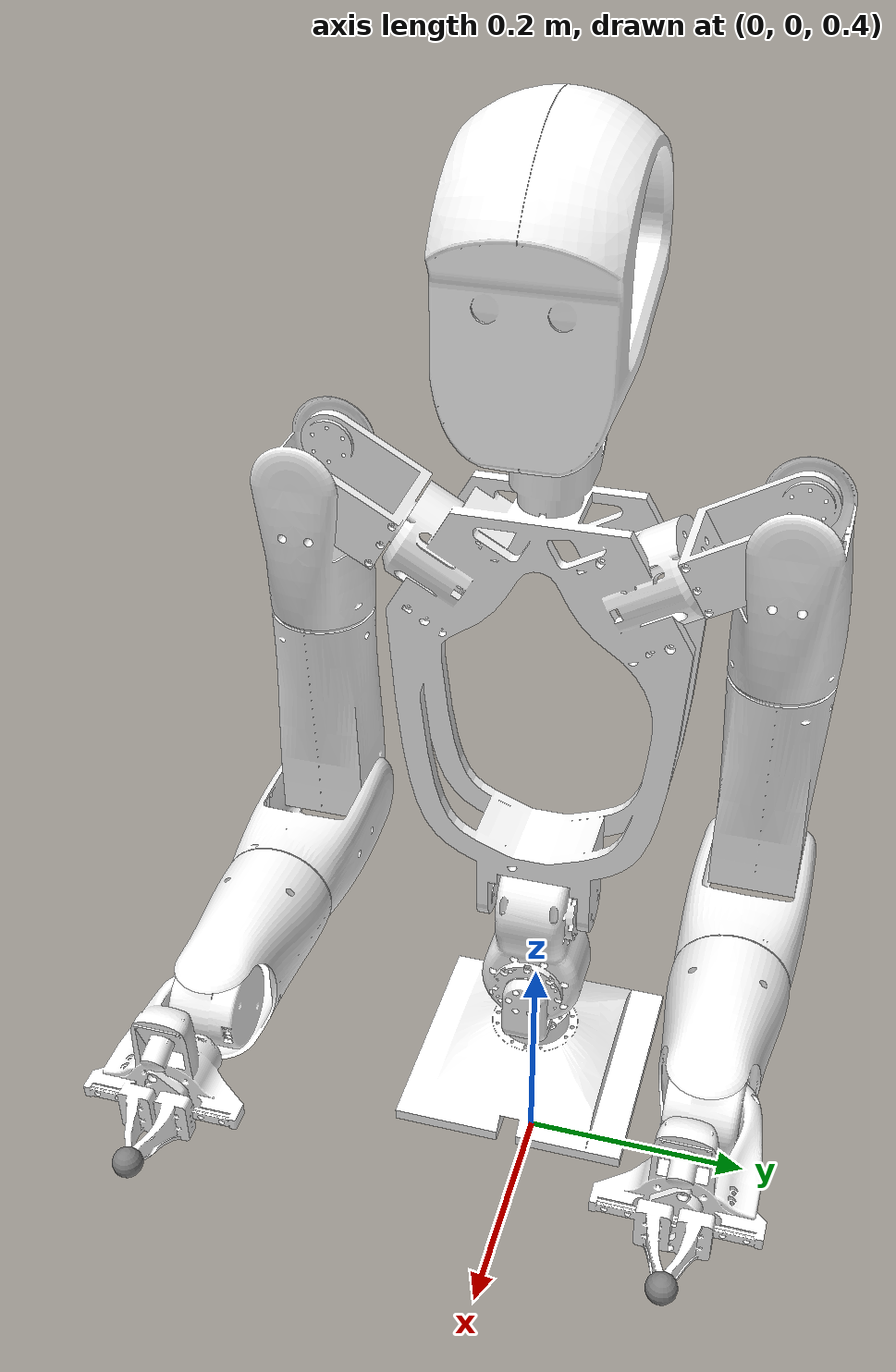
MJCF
<mujoco model="Semi_Taks_T1">
  <compiler angle="radian" meshdir="meshes" />

  <default>
    <default class="torso_motor">
      <joint damping="0.05" armature="0.01" frictionloss="0.1"/>
    </default>
    <default class="arm_motor">
      <joint damping="0.05" armature="0.01" frictionloss="0.1"/>
    </default>
    <default class="wrist_motor">
      <joint damping="0.05" armature="0.001" frictionloss="0.01"/>
    </default>
    <default class="neck_motor">
      <joint damping="0.02" armature="0.001" frictionloss="0.01"/>
    </default>
  </default>

  <asset>
    <mesh name="base_link" file="base_link.STL" />
    <mesh name="waist_yaw_link" file="waist_yaw_link.STL" />
    <mesh name="waist_roll_link" file="waist_roll_link.STL" />
    <mesh name="waist_pitch_link" file="waist_pitch_link.STL" />
    <mesh name="left_shoulder_pitch_link" file="left_shoulder_pitch_link.STL" />
    <mesh name="left_shoulder_roll_link" file="left_shoulder_roll_link.STL" />
    <mesh name="left_shoulder_yaw_link" file="left_shoulder_yaw_link.STL" />
    <mesh name="left_elbow_link" file="left_elbow_link.STL" />
    <mesh name="left_wrist_roll_link" file="left_wrist_roll_link.STL" />
    <mesh name="left_wrist_yaw_link" file="left_wrist_yaw_link.STL" />
    <mesh name="left_wrist_pitch_link" file="left_wrist_pitch_link.STL" />
    <mesh name="right_shoulder_pitch_link" file="right_shoulder_pitch_link.STL" />
    <mesh name="right_shoulder_roll_link" file="right_shoulder_roll_link.STL" />
    <mesh name="right_shoulder_yaw_link" file="right_shoulder_yaw_link.STL" />
    <mesh name="right_elbow_link" file="right_elbow_link.STL" />
    <mesh name="right_wrist_roll_link" file="right_wrist_roll_link.STL" />
    <mesh name="right_wrist_yaw_link" file="right_wrist_yaw_link.STL" />
    <mesh name="right_wrist_pitch_link" file="right_wrist_pitch_link.STL" />
    <mesh name="neck_yaw_link" file="neck_yaw_link.STL" />
    <mesh name="neck_roll_link" file="neck_roll_link.STL" />
    <mesh name="neck_pitch_link" file="neck_pitch_link.STL" />
  </asset>

  <worldbody>
    <body name="base_link" pos="0 0 0.5">
      <site name="imu" size="0.01" pos="0.0 0.0 0.0" />
      <inertial pos="0.000209 0.000196 0.010637" quat="1.000000 -0.000046 -0.000459 0.000120" mass="3.2"
        diaginertia="0.00782171 0.00839916 0.0145816" />
      <freejoint name="base_link"/>
      <geom type="mesh" contype="0" conaffinity="0" group="1" density="0" rgba="1.0 1.0 1.0 1"
        mesh="base_link" />
      <geom name="pelvis_collision" type="mesh" rgba="1.0 1.0 1.0 1" mesh="base_link" contype="1" conaffinity="1" />

      <!-- Upper Body -->
      <body name="waist_yaw_link" pos="0.0 0.0 0.058">
        <inertial pos="0.000703 0.000036 0.023511" quat="0.707107 0.707106 -0.000660 0.000661" mass="0.79"
        diaginertia="0.000424112 0.00115195 0.00139043" />
        <joint name="waist_yaw_joint" pos="0 0 0" axis="0 0 1" range="-2.618 2.618"
          actuatorfrcrange="-97 97" class="torso_motor" />
        <geom type="mesh" contype="0" conaffinity="0" group="1" density="0" rgba="1.0 1.0 1.0 1"
          mesh="waist_yaw_link" />
        <geom type="mesh" rgba="1.0 1.0 1.0 1" mesh="waist_yaw_link" contype="2" conaffinity="1" />

        <body name="waist_roll_link" pos="0.03813 3.7e-05 0.050906">
          <inertial pos="-0.036458 0.001915 0.039503" quat="-0.497668 -0.522864 -0.452622 0.523520" mass="1.56"
        diaginertia="0.00121052 0.00366195 0.00366507" />
          <joint name="waist_roll_joint" pos="0 0 0" axis="1 0 0" range="-0.52 0.52"
            actuatorfrcrange="-97 97" class="torso_motor" />
          <geom type="mesh" contype="0" conaffinity="0" group="1" density="0" rgba="1.0 1.0 1.0 1"
            mesh="waist_roll_link" />
          <geom type="mesh" rgba="1.0 1.0 1.0 1" mesh="waist_roll_link" contype="2" conaffinity="1" />

          <body name="torso_link" pos="-0.03813 -0.032925 0.079963">
            <inertial pos="-0.000218 0.028412 0.216121" quat="-0.012746 0.707391 0.013049 -0.706587" mass="2.01"
        diaginertia="0.0103593 0.031659 0.0398056" />
            <joint name="waist_pitch_joint" pos="0 0 0" axis="0 1 0" range="-0.52 0.52"
              actuatorfrcrange="-97 97" class="torso_motor" />
            <geom type="mesh" contype="0" conaffinity="0" group="1" density="0" rgba="1.0 1.0 1.0 1"
              mesh="waist_pitch_link" />
            <geom name="torso_collision" type="box" size="0.06 0.12 0.17" pos="-0.000218 0.032925 0.216121" rgba="1.0 1.0 1.0 1" contype="1" conaffinity="1" group="3" />

            <!-- Left Arm -->
            <body name="left_shoulder_pitch_link" pos="0.0 0.13582 0.33654"
              quat="0.9659258 0.2588190 0 0">
              <inertial pos="-0.003496 0.038568 0.000147" quat="0.942818 0.005189 0.001305 -0.333265" mass="0.24"
        diaginertia="0.000216626 0.000302215 0.000438512" />
              <joint name="left_shoulder_pitch_joint" pos="0 0 0" axis="0 1 0"
                range="-3.0892 2.6704" actuatorfrcrange="-27 27" class="arm_motor" />
              <geom type="mesh" contype="0" conaffinity="0" group="1" density="0" rgba="1.0 1.0 1.0 1"
                mesh="left_shoulder_pitch_link" />
              <geom type="mesh" rgba="1.0 1.0 1.0 1" mesh="left_shoulder_pitch_link" />

              <body name="left_shoulder_roll_link" pos="0.03476 0.0835 0.000425"
                quat="0.9659258 -0.2588190 0 0">
                <inertial pos="-0.034326 0.004104 -0.054527" quat="-0.466607 0.541513 0.529133 0.457232" mass="0.92"
        diaginertia="0.00160635 0.00174986 0.00232011" />
                <joint name="left_shoulder_roll_joint" pos="0 0 0" axis="1 0 0"
                  range="-1.5882 2.2515" actuatorfrcrange="-27 27" class="arm_motor" />
                <geom type="mesh" contype="0" conaffinity="0" group="1" density="0" rgba="1.0 1.0 1.0 1"
                  mesh="left_shoulder_roll_link" />
                <geom name="left_shoulder_roll_collision" type="mesh" rgba="1.0 1.0 1.0 1" mesh="left_shoulder_roll_link" contype="1" conaffinity="1" />

                <body name="left_shoulder_yaw_link" pos="-0.034375 0.0 -0.12">
                  <inertial pos="0.000352 -0.000067 -0.086391" quat="-0.705828 -0.040991 0.706119 -0.039023" mass="0.625"
        diaginertia="0.000836482 0.00204864 0.002069" />
                  <joint name="left_shoulder_yaw_joint" pos="0 0 0" axis="0 0 1"
                    range="-2.618 2.618" actuatorfrcrange="-27 27" class="arm_motor" />
                  <geom type="mesh" contype="0" conaffinity="0" group="1" density="0" rgba="1.0 1.0 1.0 1"
                    mesh="left_shoulder_yaw_link" />
                  <geom name="left_shoulder_yaw_collision" type="mesh" rgba="1.0 1.0 1.0 1" mesh="left_shoulder_yaw_link" contype="8" conaffinity="1" />

                  <body name="left_elbow_link" pos="0.000364 0.029113 -0.18099">
                    <inertial pos="0.060290 -0.018897 -0.005505" quat="0.997566 0.037813 -0.047139 -0.034794" mass="0.552"
        diaginertia="0.000980685 0.00143241 0.00168229" />
                    <joint name="left_elbow_joint" pos="0 0 0" axis="0 1 0"
                      range="-0.7 1.57" actuatorfrcrange="-27 27" class="arm_motor" />
                    <geom type="mesh" contype="0" conaffinity="0" group="1" density="0" rgba="1.0 1.0 1.0 1"
                      mesh="left_elbow_link" />
                    <geom name="left_elbow_collision" type="mesh" rgba="1.0 1.0 1.0 1" mesh="left_elbow_link" contype="1" conaffinity="1" />

                    <body name="left_wrist_roll_link" pos="0.13 -0.029125 0.0">
                      <inertial pos="0.059365 -0.000127 0.000856" quat="0.709390 0.704504 -0.014627 0.015066" mass="0.508"
        diaginertia="0.000846714 0.00108933 0.00119508" />
                      <joint name="left_wrist_roll_joint" pos="0 0 0" axis="1 0 0"
                        range="-2.67 2.67" actuatorfrcrange="-7 7" class="wrist_motor" />
                      <geom type="mesh" contype="0" conaffinity="0" group="1" density="0" rgba="1.0 1.0 1.0 1"
                        mesh="left_wrist_roll_link" />
                      <geom type="mesh" rgba="1.0 1.0 1.0 1" mesh="left_wrist_roll_link" contype="8" conaffinity="1" />
                      <geom name="left_wrist_roll_collision" type="mesh" rgba="1.0 1.0 1.0 1" mesh="left_wrist_roll_link" contype="1" conaffinity="1" />

                      <body name="left_wrist_yaw_link" pos="0.121 0.0 -0.0333">
                        <inertial pos="0.000001 0.001808 0.034229" quat="0.505557 -0.497530 -0.494299 -0.502538" mass="0.37"
        diaginertia="0.00015129 0.000161838 0.000185039" />
                        <joint name="left_wrist_yaw_joint" pos="0 0 0" axis="0 0 1"
                          range="-0.9 0.9" actuatorfrcrange="-7 7" class="wrist_motor" />
                        <geom type="mesh" contype="0" conaffinity="0" group="1" density="0" rgba="1.0 1.0 1.0 1"
                          mesh="left_wrist_yaw_link" />
                        <geom type="mesh" rgba="1.0 1.0 1.0 1" mesh="left_wrist_yaw_link" contype="8" conaffinity="1" />
                        <geom name="left_wrist_yaw_collision" type="mesh" rgba="1.0 1.0 1.0 1" mesh="left_wrist_yaw_link" contype="1" conaffinity="1" />

                        <body name="left_wrist_pitch_link" pos="0.0 0.0225 0.0333">
                          <inertial pos="0.072931 -0.016145 0.006694" quat="0.743661 -0.619814 0.106806 -0.226696" mass="0.308"
        diaginertia="0.00020361 0.000360223 0.000390146"/>
                          <joint name="left_wrist_pitch_joint" pos="0 0 0" axis="0 1 0"
                            range="-0.9 0.9" actuatorfrcrange="-7 7" class="wrist_motor" />
                          <geom type="mesh" contype="0" conaffinity="0" group="1" density="0" rgba="1.0 1.0 1.0 1"
                            mesh="left_wrist_pitch_link" />
                          <geom name="left_hand_collision" type="mesh" rgba="1.0 1.0 1.0 1" mesh="left_wrist_pitch_link" contype="1" conaffinity="1" />
                          <site name="left_hand" size="0.01" pos="0.15 -0.0225 0" />
                        </body>
                      </body>
                    </body>
                  </body>
                </body>
              </body>
            </body>

            <!-- Right Arm -->
            <body name="right_shoulder_pitch_link" pos="0.0 -0.069974 0.33654"
              quat="0.9659258 -0.2588190 0 0">
              <inertial pos="-0.003496 -0.038568 0.000147" quat="0.942818 -0.005194 0.001309 0.333265" mass="0.24"
        diaginertia="0.000216626 0.000302215 0.000438512" />
              <joint name="right_shoulder_pitch_joint" pos="0 0 0" axis="0 1 0"
                range="-3.0892 2.6704" actuatorfrcrange="-27 27" class="arm_motor" />
              <geom type="mesh" contype="0" conaffinity="0" group="1" density="0" rgba="1.0 1.0 1.0 1"
                mesh="right_shoulder_pitch_link" />
              <geom type="mesh" rgba="1.0 1.0 1.0 1" mesh="right_shoulder_pitch_link" />

              <body name="right_shoulder_roll_link" pos="0.02776 -0.0835 0.000425"
                quat="0.9659258 0.2588190 0 0">
                <inertial pos="-0.027387 -0.004099 -0.054543" quat="0.538692 -0.464976 -0.459110 -0.531814" mass="0.92"
        diaginertia="0.00160664 0.00174971 0.00232021" />
                <joint name="right_shoulder_roll_joint" pos="0 0 0" axis="1 0 0"
                  range="-2.2515 1.5882" actuatorfrcrange="-27 27" class="arm_motor" />
                <geom type="mesh" contype="0" conaffinity="0" group="1" density="0" rgba="1.0 1.0 1.0 1"
                  mesh="right_shoulder_roll_link" />
                <geom name="right_shoulder_roll_collision" type="mesh" rgba="1.0 1.0 1.0 1" mesh="right_shoulder_roll_link" contype="1" conaffinity="1" />

                <body name="right_shoulder_yaw_link" pos="-0.027375 0.0 -0.12">
                  <inertial pos="0.000351 0.000061 -0.086330" quat="0.706146 0.036788 -0.706063 0.038462" mass="0.625"
        diaginertia="0.000836592 0.00204945 0.00206961" />
                  <joint name="right_shoulder_yaw_joint" pos="0 0 0" axis="0 0 1"
                    range="-2.618 2.618" actuatorfrcrange="-27 27" class="arm_motor" />
                  <geom type="mesh" contype="0" conaffinity="0" group="1" density="0" rgba="1.0 1.0 1.0 1"
                    mesh="right_shoulder_yaw_link" />
                  <geom name="right_shoulder_yaw_collision" type="mesh" rgba="1.0 1.0 1.0 1" mesh="right_shoulder_yaw_link" contype="16" conaffinity="1" />

                  <body name="right_elbow_link" pos="0.000364 0.027375 -0.18099">
                    <inertial pos="0.060609 -0.027320 -0.005391" quat="0.998910 0.001174 -0.046413 0.004845" mass="0.552"
        diaginertia="0.00103959 0.00142282 0.00173271" />
                    <joint name="right_elbow_joint" pos="0 0 0" axis="0 1 0"
                      range="-0.7 1.57" actuatorfrcrange="-27 27" class="arm_motor" />
                    <geom type="mesh" contype="0" conaffinity="0" group="1" density="0" rgba="1.0 1.0 1.0 1"
                      mesh="right_elbow_link" />
                    <geom name="right_elbow_collision" type="mesh" rgba="1.0 1.0 1.0 1" mesh="right_elbow_link" contype="1" conaffinity="1" />

                    <body name="right_wrist_roll_link" pos="0.13 -0.027375 0.0">
                      <inertial pos="0.059348 -0.000124 0.000828" quat="0.709304 0.704564 -0.015028 0.015864" mass="0.508"
        diaginertia="0.000846771 0.00108988 0.00119553" />
                      <joint name="right_wrist_roll_joint" pos="0 0 0" axis="1 0 0"
                        range="-2.67 2.67" actuatorfrcrange="-7 7" class="wrist_motor" />
                      <geom type="mesh" contype="0" conaffinity="0" group="1" density="0" rgba="1.0 1.0 1.0 1"
                        mesh="right_wrist_roll_link" />
                      <geom type="mesh" rgba="1.0 1.0 1.0 1" mesh="right_wrist_roll_link" contype="16" conaffinity="1" />
                      <geom name="right_wrist_roll_collision" type="mesh" rgba="1.0 1.0 1.0 1" mesh="right_wrist_roll_link" contype="1" conaffinity="1" />

                      <body name="right_wrist_yaw_link" pos="0.121 0.0 -0.0333">
                        <inertial pos="-0.000001 -0.001805 0.034231" quat="-0.502813 -0.494486 -0.497307 0.505320" mass="0.37"
        diaginertia="0.000151278 0.00016184 0.000185025" />
                        <joint name="right_wrist_yaw_joint" pos="0 0 0" axis="0 0 1"
                          range="-0.9 0.9" actuatorfrcrange="-7 7" class="wrist_motor" />
                        <geom type="mesh" contype="0" conaffinity="0" group="1" density="0" rgba="1.0 1.0 1.0 1"
                          mesh="right_wrist_yaw_link" />
                        <geom type="mesh" rgba="1.0 1.0 1.0 1" mesh="right_wrist_yaw_link" contype="16" conaffinity="1" />
                        <geom name="right_wrist_yaw_collision" type="mesh" rgba="1.0 1.0 1.0 1" mesh="right_wrist_yaw_link" contype="1" conaffinity="1" />

                        <body name="right_wrist_pitch_link" pos="0.0 -0.0225 0.0333">
                          <inertial pos="0.072931 0.016145 0.006694" quat="-0.619812 0.743663 0.226696 -0.106804" mass="0.308"
        diaginertia="0.000203609 0.000360223 0.000390147"/>
                          <joint name="right_wrist_pitch_joint" pos="0 0 0" axis="0 1 0"
                            range="-0.9 0.9" actuatorfrcrange="-7 7" class="wrist_motor" />
                          <geom type="mesh" contype="0" conaffinity="0" group="1" density="0" rgba="1.0 1.0 1.0 1"
                            mesh="right_wrist_pitch_link" />
                          <geom name="right_hand_collision" type="mesh" rgba="1.0 1.0 1.0 1" mesh="right_wrist_pitch_link" contype="1" conaffinity="1" />
                          <site name="right_hand" size="0.01" pos="0.15 0.0225 0" />
                        </body>
                      </body>
                    </body>
                  </body>
                </body>
              </body>
            </body>

            <!-- Neck -->
            <body name="neck_yaw_link" pos="0.0 0.032906 0.37165" quat="1 3.2e-05 0 0">
              <inertial pos="-0.026017 0.000004 0.044450" quat="-0.000003 0.399078 0.000064 0.916917" mass="0.4"
        diaginertia="0.000158273 0.000510001 0.000543254" />
              <joint name="neck_yaw_joint" pos="0 0 0" axis="0 0 1" range="-1.57 1.57"
                actuatorfrcrange="-3 3" class="neck_motor" />
              <geom type="mesh" contype="0" conaffinity="0" group="1" density="0" rgba="1.0 1.0 1.0 1"
                mesh="neck_yaw_link" />
              <geom type="mesh" rgba="1.0 1.0 1.0 1" mesh="neck_yaw_link" contype="4" conaffinity="1" />
              <site name="neck_yaw" size="0.01" pos="0 0 -0.37165" />

              <body name="neck_roll_link" pos="-0.0719 0.0 0.0708">
                <inertial pos="0.057357 -0.000598 -0.000025" quat="-0.674875 -0.000416 0.000618 0.737931" mass="0.026"
        diaginertia="6.4839e-06 1.35416e-05 1.62635e-05" />
                <joint name="neck_roll_joint" pos="0 0 0" axis="1 0 0" range="-0.873 0.873"
                  actuatorfrcrange="-3 3" class="neck_motor" />
                <geom type="mesh" contype="0" conaffinity="0" group="1" density="0" rgba="1.0 1.0 1.0 1"
                  mesh="neck_roll_link" />
                <geom type="mesh" rgba="1.0 1.0 1.0 1" mesh="neck_roll_link" contype="4" conaffinity="1" />

                <body name="neck_pitch_link" pos="0.0719 0.02095 0.0">
                  <inertial pos="0.009305 -0.020598 0.085322" quat="0.551128 0.557629 0.439744 -0.438101" mass="0.6"
        diaginertia="0.00224315 0.00340582 0.00427196" />
                  <joint name="neck_pitch_joint" pos="0 0 0" axis="0 1 0" range="-0.873 0.873"
                    actuatorfrcrange="-3 3" class="neck_motor" />
                  <geom type="mesh" contype="0" conaffinity="0" group="1" density="0" rgba="1.0 1.0 1.0 1"
                    mesh="neck_pitch_link" />
                  <geom name="head_collision" type="mesh" rgba="1.0 1.0 1.0 1" mesh="neck_pitch_link" contype="1" conaffinity="1" />
                  <site name="neck_pitch" size="0.01" pos="0 -0.02095 0" />
                </body>
              </body>
            </body>
          </body>
        </body>
      </body>
    </body>
  </worldbody>

  <!-- Actuators (17 DOF) -->
  <actuator>
    <!-- Waist -->
    <motor name="waist_yaw" joint="waist_yaw_joint" ctrlrange="-97 97" />
    <motor name="waist_roll" joint="waist_roll_joint" ctrlrange="-97 97" />
    <motor name="waist_pitch" joint="waist_pitch_joint" ctrlrange="-97 97" />
    <!-- Left Arm -->
    <motor name="left_shoulder_pitch" joint="left_shoulder_pitch_joint" ctrlrange="-27 27" />
    <motor name="left_shoulder_roll" joint="left_shoulder_roll_joint" ctrlrange="-27 27" />
    <motor name="left_shoulder_yaw" joint="left_shoulder_yaw_joint" ctrlrange="-27 27" />
    <motor name="left_elbow" joint="left_elbow_joint" ctrlrange="-27 27" />
    <motor name="left_wrist_roll" joint="left_wrist_roll_joint" ctrlrange="-7 7" />
    <motor name="left_wrist_yaw" joint="left_wrist_yaw_joint" ctrlrange="-7 7" />
    <motor name="left_wrist_pitch" joint="left_wrist_pitch_joint" ctrlrange="-7 7" />
    <!-- Right Arm -->
    <motor name="right_shoulder_pitch" joint="right_shoulder_pitch_joint" ctrlrange="-27 27" />
    <motor name="right_shoulder_roll" joint="right_shoulder_roll_joint" ctrlrange="-27 27" />
    <motor name="right_shoulder_yaw" joint="right_shoulder_yaw_joint" ctrlrange="-27 27" />
    <motor name="right_elbow" joint="right_elbow_joint" ctrlrange="-27 27" />
    <motor name="right_wrist_roll" joint="right_wrist_roll_joint" ctrlrange="-7 7" />
    <motor name="right_wrist_yaw" joint="right_wrist_yaw_joint" ctrlrange="-7 7" />
    <motor name="right_wrist_pitch" joint="right_wrist_pitch_joint" ctrlrange="-7 7" />
    <!-- Neck -->
    <motor name="neck_yaw" joint="neck_yaw_joint" ctrlrange="-3 3" />
    <motor name="neck_roll" joint="neck_roll_joint" ctrlrange="-3 3" />
    <motor name="neck_pitch" joint="neck_pitch_joint" ctrlrange="-3 3" />
  </actuator>

  <!-- Sensors -->
  <sensor>
    <!-- Joint positions -->
    <jointpos name="waist_yaw_pos" joint="waist_yaw_joint" />
    <jointpos name="waist_roll_pos" joint="waist_roll_joint" />
    <jointpos name="waist_pitch_pos" joint="waist_pitch_joint" />
    <jointpos name="left_shoulder_pitch_pos" joint="left_shoulder_pitch_joint" />
    <jointpos name="left_shoulder_roll_pos" joint="left_shoulder_roll_joint" />
    <jointpos name="left_shoulder_yaw_pos" joint="left_shoulder_yaw_joint" />
    <jointpos name="left_elbow_pos" joint="left_elbow_joint" />
    <jointpos name="left_wrist_roll_pos" joint="left_wrist_roll_joint" />
    <jointpos name="left_wrist_yaw_pos" joint="left_wrist_yaw_joint" />
    <jointpos name="left_wrist_pitch_pos" joint="left_wrist_pitch_joint" />
    <jointpos name="right_shoulder_pitch_pos" joint="right_shoulder_pitch_joint" />
    <jointpos name="right_shoulder_roll_pos" joint="right_shoulder_roll_joint" />
    <jointpos name="right_shoulder_yaw_pos" joint="right_shoulder_yaw_joint" />
    <jointpos name="right_elbow_pos" joint="right_elbow_joint" />
    <jointpos name="right_wrist_roll_pos" joint="right_wrist_roll_joint" />
    <jointpos name="right_wrist_yaw_pos" joint="right_wrist_yaw_joint" />
    <jointpos name="right_wrist_pitch_pos" joint="right_wrist_pitch_joint" />
    <jointpos name="neck_yaw_pos" joint="neck_yaw_joint" />
    <jointpos name="neck_roll_pos" joint="neck_roll_joint" />
    <jointpos name="neck_pitch_pos" joint="neck_pitch_joint" />

    <!-- Joint velocities -->
    <jointvel name="waist_yaw_vel" joint="waist_yaw_joint" />
    <jointvel name="waist_roll_vel" joint="waist_roll_joint" />
    <jointvel name="waist_pitch_vel" joint="waist_pitch_joint" />
    <jointvel name="left_shoulder_pitch_vel" joint="left_shoulder_pitch_joint" />
    <jointvel name="left_shoulder_roll_vel" joint="left_shoulder_roll_joint" />
    <jointvel name="left_shoulder_yaw_vel" joint="left_shoulder_yaw_joint" />
    <jointvel name="left_elbow_vel" joint="left_elbow_joint" />
    <jointvel name="left_wrist_roll_vel" joint="left_wrist_roll_joint" />
    <jointvel name="left_wrist_yaw_vel" joint="left_wrist_yaw_joint" />
    <jointvel name="left_wrist_pitch_vel" joint="left_wrist_pitch_joint" />
    <jointvel name="right_shoulder_pitch_vel" joint="right_shoulder_pitch_joint" />
    <jointvel name="right_shoulder_roll_vel" joint="right_shoulder_roll_joint" />
    <jointvel name="right_shoulder_yaw_vel" joint="right_shoulder_yaw_joint" />
    <jointvel name="right_elbow_vel" joint="right_elbow_joint" />
    <jointvel name="right_wrist_roll_vel" joint="right_wrist_roll_joint" />
    <jointvel name="right_wrist_yaw_vel" joint="right_wrist_yaw_joint" />
    <jointvel name="right_wrist_pitch_vel" joint="right_wrist_pitch_joint" />
    <jointvel name="neck_yaw_vel" joint="neck_yaw_joint" />
    <jointvel name="neck_roll_vel" joint="neck_roll_joint" />
    <jointvel name="neck_pitch_vel" joint="neck_pitch_joint" />

    <!-- Joint actuator forces -->
    <jointactuatorfrc name="waist_yaw_torque" joint="waist_yaw_joint" />
    <jointactuatorfrc name="waist_roll_torque" joint="waist_roll_joint" />
    <jointactuatorfrc name="waist_pitch_torque" joint="waist_pitch_joint" />
    <jointactuatorfrc name="left_shoulder_pitch_torque" joint="left_shoulder_pitch_joint" />
    <jointactuatorfrc name="left_shoulder_roll_torque" joint="left_shoulder_roll_joint" />
    <jointactuatorfrc name="left_shoulder_yaw_torque" joint="left_shoulder_yaw_joint" />
    <jointactuatorfrc name="left_elbow_torque" joint="left_elbow_joint" />
    <jointactuatorfrc name="left_wrist_roll_torque" joint="left_wrist_roll_joint" />
    <jointactuatorfrc name="left_wrist_yaw_torque" joint="left_wrist_yaw_joint" />
    <jointactuatorfrc name="left_wrist_pitch_torque" joint="left_wrist_pitch_joint" />
    <jointactuatorfrc name="right_shoulder_pitch_torque" joint="right_shoulder_pitch_joint" />
    <jointactuatorfrc name="right_shoulder_roll_torque" joint="right_shoulder_roll_joint" />
    <jointactuatorfrc name="right_shoulder_yaw_torque" joint="right_shoulder_yaw_joint" />
    <jointactuatorfrc name="right_elbow_torque" joint="right_elbow_joint" />
    <jointactuatorfrc name="right_wrist_roll_torque" joint="right_wrist_roll_joint" />
    <jointactuatorfrc name="right_wrist_yaw_torque" joint="right_wrist_yaw_joint" />
    <jointactuatorfrc name="right_wrist_pitch_torque" joint="right_wrist_pitch_joint" />
    <jointactuatorfrc name="neck_yaw_torque" joint="neck_yaw_joint" />
    <jointactuatorfrc name="neck_roll_torque" joint="neck_roll_joint" />
    <jointactuatorfrc name="neck_pitch_torque" joint="neck_pitch_joint" />

    <!-- IMU sensors -->
    <framequat name="imu_quat" objtype="site" objname="imu" />
    <gyro name="imu_gyro" site="imu" />
    <accelerometer name="imu_acc" site="imu" />

    <framepos name="frame_pos" objtype="site" objname="imu" />
    <framelinvel name="frame_vel" objtype="site" objname="imu" />
  </sensor>

</mujoco>
